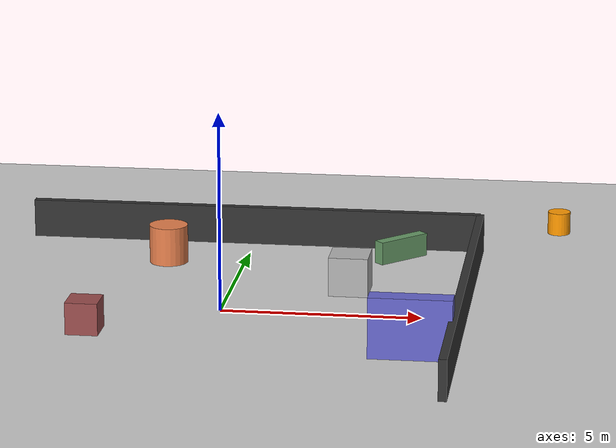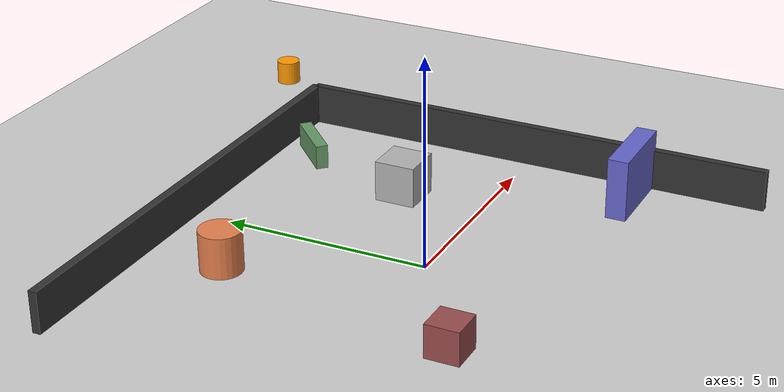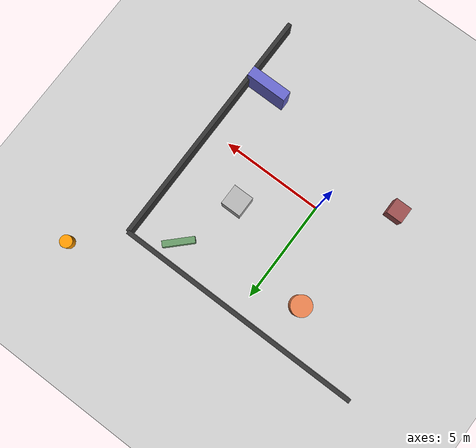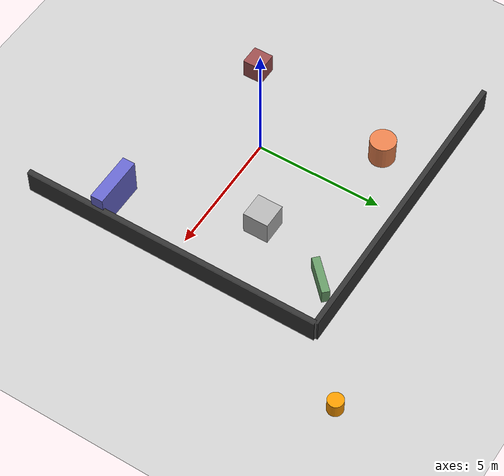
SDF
<?xml version="1.0"?>
<sdf version="1.6">
  <world name="bio_inspired_nav_world">

    <!-- Physics settings -->
    <physics type="ode">
      <max_step_size>0.001</max_step_size>
      <real_time_factor>1</real_time_factor>
      <real_time_update_rate>1000</real_time_update_rate>
    </physics>

    <!-- Lighting -->
    <include>
      <uri>model://sun</uri>
    </include>

    <!-- Ground plane -->
    <include>
      <uri>model://ground_plane</uri>
    </include>

    <!-- Environment with obstacles -->
    <model name="obstacle_1">
      <static>true</static>
      <pose>3 2 0.5 0 0 0</pose>
      <link name="link">
        <collision name="collision">
          <geometry>
            <box>
              <size>1 1 1</size>
            </box>
          </geometry>
        </collision>
        <visual name="visual">
          <geometry>
            <box>
              <size>1 1 1</size>
            </box>
          </geometry>
          <material>
            <ambient>0.5 0.5 0.5 1</ambient>
            <diffuse>0.7 0.7 0.7 1</diffuse>
          </material>
        </visual>
      </link>
    </model>

    <model name="obstacle_2">
      <static>true</static>
      <pose>-2 4 0.5 0 0 0</pose>
      <link name="link">
        <collision name="collision">
          <geometry>
            <cylinder>
              <radius>0.5</radius>
              <length>1</length>
            </cylinder>
          </geometry>
        </collision>
        <visual name="visual">
          <geometry>
            <cylinder>
              <radius>0.5</radius>
              <length>1</length>
            </cylinder>
          </geometry>
          <material>
            <ambient>0.8 0.4 0.2 1</ambient>
            <diffuse>0.9 0.5 0.3 1</diffuse>
          </material>
        </visual>
      </link>
    </model>

    <model name="obstacle_3">
      <static>true</static>
      <pose>5 -3 0.75 0 0 0</pose>
      <link name="link">
        <collision name="collision">
          <geometry>
            <box>
              <size>2 0.5 1.5</size>
            </box>
          </geometry>
        </collision>
        <visual name="visual">
          <geometry>
            <box>
              <size>2 0.5 1.5</size>
            </box>
          </geometry>
          <material>
            <ambient>0.3 0.3 0.6 1</ambient>
            <diffuse>0.4 0.4 0.8 1</diffuse>
          </material>
        </visual>
      </link>
    </model>

    <!-- Maze-like walls -->
    <model name="wall_1">
      <static>true</static>
      <pose>0 6 0.5 0 0 0</pose>
      <link name="link">
        <collision name="collision">
          <geometry>
            <box>
              <size>12 0.2 1</size>
            </box>
          </geometry>
        </collision>
        <visual name="visual">
          <geometry>
            <box>
              <size>12 0.2 1</size>
            </box>
          </geometry>
          <material>
            <ambient>0.2 0.2 0.2 1</ambient>
          </material>
        </visual>
      </link>
    </model>

    <model name="wall_2">
      <static>true</static>
      <pose>6 0 0.5 0 0 1.5708</pose>
      <link name="link">
        <collision name="collision">
          <geometry>
            <box>
              <size>12 0.2 1</size>
            </box>
          </geometry>
        </collision>
        <visual name="visual">
          <geometry>
            <box>
              <size>12 0.2 1</size>
            </box>
          </geometry>
          <material>
            <ambient>0.2 0.2 0.2 1</ambient>
          </material>
        </visual>
      </link>
    </model>

    <!-- Target object (bright orange cylinder - represents scent source) -->
    <model name="target">
      <static>true</static>
      <pose>8 8 0.3 0 0 0</pose>
      <link name="link">
        <collision name="collision">
          <geometry>
            <cylinder>
              <radius>0.3</radius>
              <length>0.6</length>
            </cylinder>
          </geometry>
        </collision>
        <visual name="visual">
          <geometry>
            <cylinder>
              <radius>0.3</radius>
              <length>0.6</length>
            </cylinder>
          </geometry>
          <material>
            <ambient>1 0.5 0 1</ambient>
            <diffuse>1 0.6 0 1</diffuse>
            <specular>0.8 0.8 0.8 1</specular>
            <emissive>0.3 0.15 0 1</emissive>
          </material>
        </visual>
      </link>
    </model>

    <!-- Gas source marker (invisible, for plugin) -->
    <model name="gas_source">
      <static>true</static>
      <pose>8 8 0.1 0 0 0</pose>
      <link name="link">
        <visual name="visual">
          <geometry>
            <sphere>
              <radius>0.1</radius>
            </sphere>
          </geometry>
          <material>
            <ambient>0 1 0 0.3</ambient>
            <diffuse>0 1 0 0.3</diffuse>
          </material>
        </visual>
      </link>
    </model>

    <!-- Additional obstacles for complexity -->
    <model name="obstacle_4">
      <static>true</static>
      <pose>-3 -2 0.4 0 0 0</pose>
      <link name="link">
        <collision name="collision">
          <geometry>
            <box>
              <size>0.8 0.8 0.8</size>
            </box>
          </geometry>
        </collision>
        <visual name="visual">
          <geometry>
            <box>
              <size>0.8 0.8 0.8</size>
            </box>
          </geometry>
          <material>
            <ambient>0.6 0.3 0.3 1</ambient>
          </material>
        </visual>
      </link>
    </model>

    <model name="obstacle_5">
      <static>true</static>
      <pose>4 5 0.3 0 0 0.785</pose>
      <link name="link">
        <collision name="collision">
          <geometry>
            <box>
              <size>1.5 0.3 0.6</size>
            </box>
          </geometry>
        </collision>
        <visual name="visual">
          <geometry>
            <box>
              <size>1.5 0.3 0.6</size>
            </box>
          </geometry>
          <material>
            <ambient>0.4 0.6 0.4 1</ambient>
          </material>
        </visual>
      </link>
    </model>

    <!-- Scene settings -->
    <scene>
      <ambient>0.5 0.5 0.5 1</ambient>
      <background>0.7 0.8 0.9 1</background>
      <shadows>true</shadows>
    </scene>

    <!-- GUI settings -->
    <gui>
      <camera name="user_camera">
        <pose>-5 -5 10 0 0.5 0.785</pose>
      </camera>
    </gui>

  </world>
</sdf>
